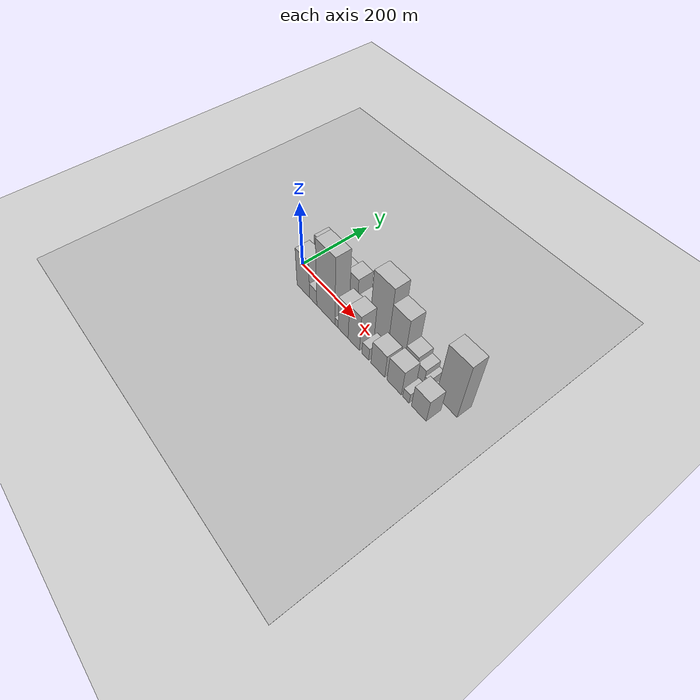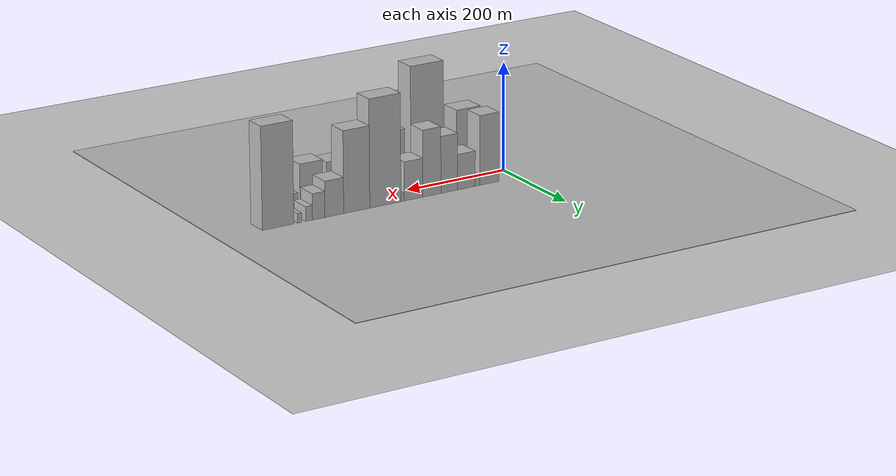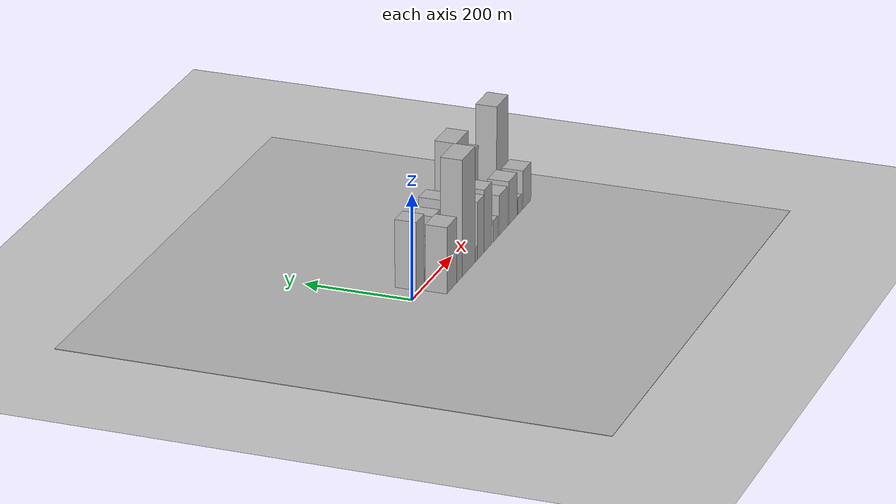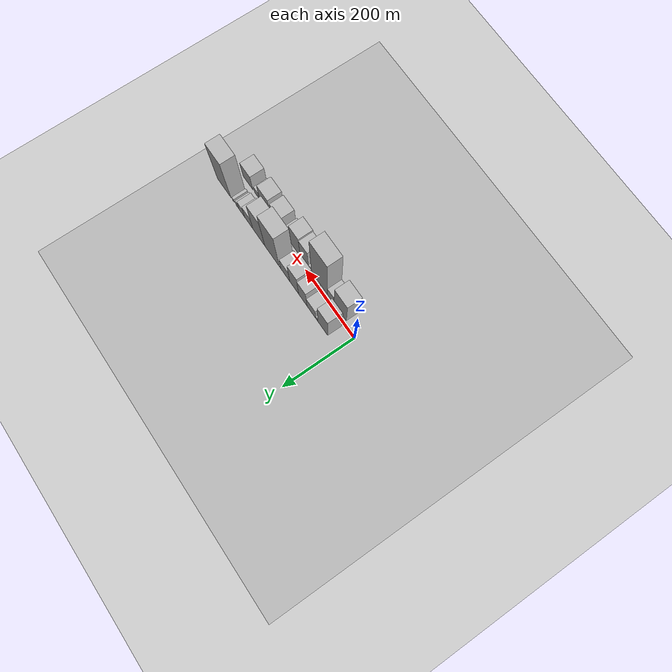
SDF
<?xml version="1.0" encoding="utf-8"?>

<sdf version="1.6">

   <world name="default">

      <gui fullscreen="0">

         <camera name="user_camera">

            <pose>-15 0 4.57585 0 0 0</pose>

            <view_controller>orbit</view_controller>

         </camera>

      </gui>

      <scene>

         <sky>

           <clouds>

             <speed>12</speed>

           </clouds>

         </sky>

         <ambient>0.4 0.4 0.4 1</ambient>

         <background>0.7 0.7 0.7 1</background>

         <shadows>1</shadows>

      </scene>

      <gravity>0 0 -9.8066</gravity>

      <magnetic_field>6e-06 2.3e-05 -4.2e-05</magnetic_field>

      <physics default="0" name="default_physics" type="ode">

         <ode>

            <solver>

               <type>quick</type>

               <iters>10</iters>

               <sor>1.0</sor>

               <use_dynamic_moi_rescaling>0</use_dynamic_moi_rescaling>

            </solver>

            <constraints>

               <cfm>0</cfm>

               <erp>0.2</erp>

               <contact_max_correcting_vel>100</contact_max_correcting_vel>

               <contact_surface_layer>0.001</contact_surface_layer>

            </constraints>

         </ode>

         <max_step_size>0.004</max_step_size>

         <real_time_factor>1</real_time_factor>

         <real_time_update_rate>250</real_time_update_rate>

      </physics>

      <light name="sun" type="directional">

         <cast_shadows>1</cast_shadows>

         <pose>0 0 10 0 0 0</pose>

         <diffuse>0.8 0.8 0.8 1</diffuse>

         <specular>0.2 0.2 0.2 1</specular>

         <attenuation>

            <range>1000</range>

            <constant>0.9</constant>

            <linear>0.01</linear>

            <quadratic>0.001</quadratic>

         </attenuation>

         <direction>-0.5 0.1 -0.9</direction>

      </light>

      <include>

         <name>ground_plane_1</name>

         <uri>model://HANNAS_ground_plane</uri>

         <pose>0 0 0  0 0 0</pose>

      </include>

      <include>

         <name>ground_plane_2</name>

         <uri>model://HANNAS_ground_plane</uri>

         <pose>100 0 0  0 0 0</pose>

      </include>

      <model name="building_1">

         <static>1</static>

         <pose frame="">60.0380 27.5000 0 0.000000 0.000000 1.570796</pose>

         <link name="link">

            <pose frame="">0 0 64.50 0 0 0</pose>

            <collision name="collision">

               <geometry>

                  <box>

                     <size>40.0000 40.0759 129.0000</size>

                  </box>

               </geometry>

               <max_contacts>10</max_contacts>

               <surface>

                  <contact>

                     <ode/>

                  </contact>

                  <bounce/>

                  <friction>

                     <torsional>

                        <ode/>

                     </torsional>

                     <ode/>

                  </friction>

               </surface>

            </collision>

            <visual name="visual">

               <cast_shadows>0</cast_shadows>

               <geometry>

                  <box>

                     <size>40.0000 40.0759 129.0000</size>

                  </box>

               </geometry>

               <material>

                  <script>

                     <uri>model://HANNAS_wall/materials/scripts</uri>

                     <uri>model://HANNAS_wall/materials/textures</uri>

                     <name>vrc/HANNAS_wall</name>

                  </script>

               </material>

            </visual>

            <self_collide>0</self_collide>

            <enable_wind>0</enable_wind>

            <kinematic>0</kinematic>

         </link>

      </model>

      <model name="building_2">

         <static>1</static>

         <pose frame="">84.7086 27.5000 0 0.000000 0.000000 1.570796</pose>

         <link name="link">

            <pose frame="">0 0 10.50 0 0 0</pose>

            <collision name="collision">

               <geometry>

                  <box>

                     <size>40.0000 9.2653 21.0000</size>

                  </box>

               </geometry>

               <max_contacts>10</max_contacts>

               <surface>

                  <contact>

                     <ode/>

                  </contact>

                  <bounce/>

                  <friction>

                     <torsional>

                        <ode/>

                     </torsional>

                     <ode/>

                  </friction>

               </surface>

            </collision>

            <visual name="visual">

               <cast_shadows>0</cast_shadows>

               <geometry>

                  <box>

                     <size>40.0000 9.2653 21.0000</size>

                  </box>

               </geometry>

               <material>

                  <script>

                     <uri>model://HANNAS_wall/materials/scripts</uri>

                     <uri>model://HANNAS_wall/materials/textures</uri>

                     <name>vrc/HANNAS_wall</name>

                  </script>

               </material>

            </visual>

            <self_collide>0</self_collide>

            <enable_wind>0</enable_wind>

            <kinematic>0</kinematic>

         </link>

      </model>

      <model name="building_3">

         <static>1</static>

         <pose frame="">107.3640 27.5000 0 0.000000 0.000000 1.570796</pose>

         <link name="link">

            <pose frame="">0 0 33.00 0 0 0</pose>

            <collision name="collision">

               <geometry>

                  <box>

                     <size>40.0000 36.0454 66.0000</size>

                  </box>

               </geometry>

               <max_contacts>10</max_contacts>

               <surface>

                  <contact>

                     <ode/>

                  </contact>

                  <bounce/>

                  <friction>

                     <torsional>

                        <ode/>

                     </torsional>

                     <ode/>

                  </friction>

               </surface>

            </collision>

            <visual name="visual">

               <cast_shadows>0</cast_shadows>

               <geometry>

                  <box>

                     <size>40.0000 36.0454 66.0000</size>

                  </box>

               </geometry>

               <material>

                  <script>

                     <uri>model://HANNAS_wall/materials/scripts</uri>

                     <uri>model://HANNAS_wall/materials/textures</uri>

                     <name>vrc/HANNAS_wall</name>

                  </script>

               </material>

            </visual>

            <self_collide>0</self_collide>

            <enable_wind>0</enable_wind>

            <kinematic>0</kinematic>

         </link>

      </model>

      <model name="building_4">

         <static>1</static>

         <pose frame="">142.6135 27.5000 0 0.000000 0.000000 1.570796</pose>

         <link name="link">

            <pose frame="">0 0 52.50 0 0 0</pose>

            <collision name="collision">

               <geometry>

                  <box>

                     <size>40.0000 34.4536 105.0000</size>

                  </box>

               </geometry>

               <max_contacts>10</max_contacts>

               <surface>

                  <contact>

                     <ode/>

                  </contact>

                  <bounce/>

                  <friction>

                     <torsional>

                        <ode/>

                     </torsional>

                     <ode/>

                  </friction>

               </surface>

            </collision>

            <visual name="visual">

               <cast_shadows>0</cast_shadows>

               <geometry>

                  <box>

                     <size>40.0000 34.4536 105.0000</size>

                  </box>

               </geometry>

               <material>

                  <script>

                     <uri>model://HANNAS_wall/materials/scripts</uri>

                     <uri>model://HANNAS_wall/materials/textures</uri>

                     <name>vrc/HANNAS_wall</name>

                  </script>

               </material>

            </visual>

            <self_collide>0</self_collide>

            <enable_wind>0</enable_wind>

            <kinematic>0</kinematic>

         </link>

      </model>

      <model name="building_5">

         <static>1</static>

         <pose frame="">178.4815 27.5000 0 0.000000 0.000000 1.570796</pose>

         <link name="link">

            <pose frame="">0 0 61.50 0 0 0</pose>

            <collision name="collision">

               <geometry>

                  <box>

                     <size>40.0000 37.2824 123.0000</size>

                  </box>

               </geometry>

               <max_contacts>10</max_contacts>

               <surface>

                  <contact>

                     <ode/>

                  </contact>

                  <bounce/>

                  <friction>

                     <torsional>

                        <ode/>

                     </torsional>

                     <ode/>

                  </friction>

               </surface>

            </collision>

            <visual name="visual">

               <cast_shadows>0</cast_shadows>

               <geometry>

                  <box>

                     <size>40.0000 37.2824 123.0000</size>

                  </box>

               </geometry>

               <material>

                  <script>

                     <uri>model://HANNAS_wall/materials/scripts</uri>

                     <uri>model://HANNAS_wall/materials/textures</uri>

                     <name>vrc/HANNAS_wall</name>

                  </script>

               </material>

            </visual>

            <self_collide>0</self_collide>

            <enable_wind>0</enable_wind>

            <kinematic>0</kinematic>

         </link>

      </model>

      <model name="building_6">

         <static>1</static>

         <pose frame="">215.9666 27.5000 0 0.000000 0.000000 1.570796</pose>

         <link name="link">

            <pose frame="">0 0 36.00 0 0 0</pose>

            <collision name="collision">

               <geometry>

                  <box>

                     <size>40.0000 37.6877 72.0000</size>

                  </box>

               </geometry>

               <max_contacts>10</max_contacts>

               <surface>

                  <contact>

                     <ode/>

                  </contact>

                  <bounce/>

                  <friction>

                     <torsional>

                        <ode/>

                     </torsional>

                     <ode/>

                  </friction>

               </surface>

            </collision>

            <visual name="visual">

               <cast_shadows>0</cast_shadows>

               <geometry>

                  <box>

                     <size>40.0000 37.6877 72.0000</size>

                  </box>

               </geometry>

               <material>

                  <script>

                     <uri>model://HANNAS_wall/materials/scripts</uri>

                     <uri>model://HANNAS_wall/materials/textures</uri>

                     <name>vrc/HANNAS_wall</name>

                  </script>

               </material>

            </visual>

            <self_collide>0</self_collide>

            <enable_wind>0</enable_wind>

            <kinematic>0</kinematic>

         </link>

      </model>

      <model name="building_7">

         <static>1</static>

         <pose frame="">238.1888 27.5000 0 0.000000 0.000000 1.570796</pose>

         <link name="link">

            <pose frame="">0 0 7.50 0 0 0</pose>

            <collision name="collision">

               <geometry>

                  <box>

                     <size>40.0000 6.7567 15.0000</size>

                  </box>

               </geometry>

               <max_contacts>10</max_contacts>

               <surface>

                  <contact>

                     <ode/>

                  </contact>

                  <bounce/>

                  <friction>

                     <torsional>

                        <ode/>

                     </torsional>

                     <ode/>

                  </friction>

               </surface>

            </collision>

            <visual name="visual">

               <cast_shadows>0</cast_shadows>

               <geometry>

                  <box>

                     <size>40.0000 6.7567 15.0000</size>

                  </box>

               </geometry>

               <material>

                  <script>

                     <uri>model://HANNAS_wall/materials/scripts</uri>

                     <uri>model://HANNAS_wall/materials/textures</uri>

                     <name>vrc/HANNAS_wall</name>

                  </script>

               </material>

            </visual>

            <self_collide>0</self_collide>

            <enable_wind>0</enable_wind>

            <kinematic>0</kinematic>

         </link>

      </model>

      <model name="building_8">

         <static>1</static>

         <pose frame="">272.8976 27.5000 0 0.000000 0.000000 1.570796</pose>

         <link name="link">

            <pose frame="">0 0 99.00 0 0 0</pose>

            <collision name="collision">

               <geometry>

                  <box>

                     <size>40.0000 62.6610 198.0000</size>

                  </box>

               </geometry>

               <max_contacts>10</max_contacts>

               <surface>

                  <contact>

                     <ode/>

                  </contact>

                  <bounce/>

                  <friction>

                     <torsional>

                        <ode/>

                     </torsional>

                     <ode/>

                  </friction>

               </surface>

            </collision>

            <visual name="visual">

               <cast_shadows>0</cast_shadows>

               <geometry>

                  <box>

                     <size>40.0000 62.6610 198.0000</size>

                  </box>

               </geometry>

               <material>

                  <script>

                     <uri>model://HANNAS_wall/materials/scripts</uri>

                     <uri>model://HANNAS_wall/materials/textures</uri>

                     <name>vrc/HANNAS_wall</name>

                  </script>

               </material>

            </visual>

            <self_collide>0</self_collide>

            <enable_wind>0</enable_wind>

            <kinematic>0</kinematic>

         </link>

      </model>

      <model name="building_9">

         <static>1</static>

         <pose frame="">330.2017 27.5000 0 0.000000 0.000000 1.570796</pose>

         <link name="link">

            <pose frame="">0 0 75.00 0 0 0</pose>

            <collision name="collision">

               <geometry>

                  <box>

                     <size>40.0000 51.9472 150.0000</size>

                  </box>

               </geometry>

               <max_contacts>10</max_contacts>

               <surface>

                  <contact>

                     <ode/>

                  </contact>

                  <bounce/>

                  <friction>

                     <torsional>

                        <ode/>

                     </torsional>

                     <ode/>

                  </friction>

               </surface>

            </collision>

            <visual name="visual">

               <cast_shadows>0</cast_shadows>

               <geometry>

                  <box>

                     <size>40.0000 51.9472 150.0000</size>

                  </box>

               </geometry>

               <material>

                  <script>

                     <uri>model://HANNAS_wall/materials/scripts</uri>

                     <uri>model://HANNAS_wall/materials/textures</uri>

                     <name>vrc/HANNAS_wall</name>

                  </script>

               </material>

            </visual>

            <self_collide>0</self_collide>

            <enable_wind>0</enable_wind>

            <kinematic>0</kinematic>

         </link>

      </model>

      <model name="building_10">

         <static>1</static>

         <pose frame="">374.7162 27.5000 0 0.000000 0.000000 1.570796</pose>

         <link name="link">

            <pose frame="">0 0 33.00 0 0 0</pose>

            <collision name="collision">

               <geometry>

                  <box>

                     <size>40.0000 37.0818 66.0000</size>

                  </box>

               </geometry>

               <max_contacts>10</max_contacts>

               <surface>

                  <contact>

                     <ode/>

                  </contact>

                  <bounce/>

                  <friction>

                     <torsional>

                        <ode/>

                     </torsional>

                     <ode/>

                  </friction>

               </surface>

            </collision>

            <visual name="visual">

               <cast_shadows>0</cast_shadows>

               <geometry>

                  <box>

                     <size>40.0000 37.0818 66.0000</size>

                  </box>

               </geometry>

               <material>

                  <script>

                     <uri>model://HANNAS_wall/materials/scripts</uri>

                     <uri>model://HANNAS_wall/materials/textures</uri>

                     <name>vrc/HANNAS_wall</name>

                  </script>

               </material>

            </visual>

            <self_collide>0</self_collide>

            <enable_wind>0</enable_wind>

            <kinematic>0</kinematic>

         </link>

      </model>

      <model name="building_11">

         <static>1</static>

         <pose frame="">405.5777 27.5000 0 0.000000 0.000000 1.570796</pose>

         <link name="link">

            <pose frame="">0 0 24.00 0 0 0</pose>

            <collision name="collision">

               <geometry>

                  <box>

                     <size>40.0000 24.6411 48.0000</size>

                  </box>

               </geometry>

               <max_contacts>10</max_contacts>

               <surface>

                  <contact>

                     <ode/>

                  </contact>

                  <bounce/>

                  <friction>

                     <torsional>

                        <ode/>

                     </torsional>

                     <ode/>

                  </friction>

               </surface>

            </collision>

            <visual name="visual">

               <cast_shadows>0</cast_shadows>

               <geometry>

                  <box>

                     <size>40.0000 24.6411 48.0000</size>

                  </box>

               </geometry>

               <material>

                  <script>

                     <uri>model://HANNAS_wall/materials/scripts</uri>

                     <uri>model://HANNAS_wall/materials/textures</uri>

                     <name>vrc/HANNAS_wall</name>

                  </script>

               </material>

            </visual>

            <self_collide>0</self_collide>

            <enable_wind>0</enable_wind>

            <kinematic>0</kinematic>

         </link>

      </model>

      <model name="building_12">

         <static>1</static>

         <pose frame="">424.4963 27.5000 0 0.000000 0.000000 1.570796</pose>

         <link name="link">

            <pose frame="">0 0 13.50 0 0 0</pose>

            <collision name="collision">

               <geometry>

                  <box>

                     <size>40.0000 13.1961 27.0000</size>

                  </box>

               </geometry>

               <max_contacts>10</max_contacts>

               <surface>

                  <contact>

                     <ode/>

                  </contact>

                  <bounce/>

                  <friction>

                     <torsional>

                        <ode/>

                     </torsional>

                     <ode/>

                  </friction>

               </surface>

            </collision>

            <visual name="visual">

               <cast_shadows>0</cast_shadows>

               <geometry>

                  <box>

                     <size>40.0000 13.1961 27.0000</size>

                  </box>

               </geometry>

               <material>

                  <script>

                     <uri>model://HANNAS_wall/materials/scripts</uri>

                     <uri>model://HANNAS_wall/materials/textures</uri>

                     <name>vrc/HANNAS_wall</name>

                  </script>

               </material>

            </visual>

            <self_collide>0</self_collide>

            <enable_wind>0</enable_wind>

            <kinematic>0</kinematic>

         </link>

      </model>

      <model name="building_13">

         <static>1</static>

         <pose frame="">443.1050 27.5000 0 0.000000 0.000000 1.570796</pose>

         <link name="link">

            <pose frame="">0 0 9.00 0 0 0</pose>

            <collision name="collision">

               <geometry>

                  <box>

                     <size>40.0000 8.0213 18.0000</size>

                  </box>

               </geometry>

               <max_contacts>10</max_contacts>

               <surface>

                  <contact>

                     <ode/>

                  </contact>

                  <bounce/>

                  <friction>

                     <torsional>

                        <ode/>

                     </torsional>

                     <ode/>

                  </friction>

               </surface>

            </collision>

            <visual name="visual">

               <cast_shadows>0</cast_shadows>

               <geometry>

                  <box>

                     <size>40.0000 8.0213 18.0000</size>

                  </box>

               </geometry>

               <material>

                  <script>

                     <uri>model://HANNAS_wall/materials/scripts</uri>

                     <uri>model://HANNAS_wall/materials/textures</uri>

                     <name>vrc/HANNAS_wall</name>

                  </script>

               </material>

            </visual>

            <self_collide>0</self_collide>

            <enable_wind>0</enable_wind>

            <kinematic>0</kinematic>

         </link>

      </model>

      <model name="building_14">

         <static>1</static>

         <pose frame="">484.8795 27.5000 0 0.000000 0.000000 1.570796</pose>

         <link name="link">

            <pose frame="">0 0 93.00 0 0 0</pose>

            <collision name="collision">

               <geometry>

                  <box>

                     <size>40.0000 61.5275 186.0000</size>

                  </box>

               </geometry>

               <max_contacts>10</max_contacts>

               <surface>

                  <contact>

                     <ode/>

                  </contact>

                  <bounce/>

                  <friction>

                     <torsional>

                        <ode/>

                     </torsional>

                     <ode/>

                  </friction>

               </surface>

            </collision>

            <visual name="visual">

               <cast_shadows>0</cast_shadows>

               <geometry>

                  <box>

                     <size>40.0000 61.5275 186.0000</size>

                  </box>

               </geometry>

               <material>

                  <script>

                     <uri>model://HANNAS_wall/materials/scripts</uri>

                     <uri>model://HANNAS_wall/materials/textures</uri>

                     <name>vrc/HANNAS_wall</name>

                  </script>

               </material>

            </visual>

            <self_collide>0</self_collide>

            <enable_wind>0</enable_wind>

            <kinematic>0</kinematic>

         </link>

      </model>

      <model name="building_15">

         <static>1</static>

         <pose frame="">68.8182 -27.5000 0 0.000000 0.000000 1.570796</pose>

         <link name="link">

            <pose frame="">0 0 63.00 0 0 0</pose>

            <collision name="collision">

               <geometry>

                  <box>

                     <size>40.0000 49.6365 126.0000</size>

                  </box>

               </geometry>

               <max_contacts>10</max_contacts>

               <surface>

                  <contact>

                     <ode/>

                  </contact>

                  <bounce/>

                  <friction>

                     <torsional>

                        <ode/>

                     </torsional>

                     <ode/>

                  </friction>

               </surface>

            </collision>

            <visual name="visual">

               <cast_shadows>0</cast_shadows>

               <geometry>

                  <box>

                     <size>40.0000 49.6365 126.0000</size>

                  </box>

               </geometry>

               <material>

                  <script>

                     <uri>model://HANNAS_wall/materials/scripts</uri>

                     <uri>model://HANNAS_wall/materials/textures</uri>

                     <name>vrc/HANNAS_wall</name>

                  </script>

               </material>

            </visual>

            <self_collide>0</self_collide>

            <enable_wind>0</enable_wind>

            <kinematic>0</kinematic>

         </link>

      </model>

      <model name="building_16">

         <static>1</static>

         <pose frame="">107.2414 -27.5000 0 0.000000 0.000000 1.570796</pose>

         <link name="link">

            <pose frame="">0 0 25.50 0 0 0</pose>

            <collision name="collision">

               <geometry>

                  <box>

                     <size>40.0000 27.2099 51.0000</size>

                  </box>

               </geometry>

               <max_contacts>10</max_contacts>

               <surface>

                  <contact>

                     <ode/>

                  </contact>

                  <bounce/>

                  <friction>

                     <torsional>

                        <ode/>

                     </torsional>

                     <ode/>

                  </friction>

               </surface>

            </collision>

            <visual name="visual">

               <cast_shadows>0</cast_shadows>

               <geometry>

                  <box>

                     <size>40.0000 27.2099 51.0000</size>

                  </box>

               </geometry>

               <material>

                  <script>

                     <uri>model://HANNAS_wall/materials/scripts</uri>

                     <uri>model://HANNAS_wall/materials/textures</uri>

                     <name>vrc/HANNAS_wall</name>

                  </script>

               </material>

            </visual>

            <self_collide>0</self_collide>

            <enable_wind>0</enable_wind>

            <kinematic>0</kinematic>

         </link>

      </model>

      <model name="building_17">

         <static>1</static>

         <pose frame="">154.3168 -27.5000 0 0.000000 0.000000 1.570796</pose>

         <link name="link">

            <pose frame="">0 0 111.00 0 0 0</pose>

            <collision name="collision">

               <geometry>

                  <box>

                     <size>40.0000 66.9409 222.0000</size>

                  </box>

               </geometry>

               <max_contacts>10</max_contacts>

               <surface>

                  <contact>

                     <ode/>

                  </contact>

                  <bounce/>

                  <friction>

                     <torsional>

                        <ode/>

                     </torsional>

                     <ode/>

                  </friction>

               </surface>

            </collision>

            <visual name="visual">

               <cast_shadows>0</cast_shadows>

               <geometry>

                  <box>

                     <size>40.0000 66.9409 222.0000</size>

                  </box>

               </geometry>

               <material>

                  <script>

                     <uri>model://HANNAS_wall/materials/scripts</uri>

                     <uri>model://HANNAS_wall/materials/textures</uri>

                     <name>vrc/HANNAS_wall</name>

                  </script>

               </material>

            </visual>

            <self_collide>0</self_collide>

            <enable_wind>0</enable_wind>

            <kinematic>0</kinematic>

         </link>

      </model>

      <model name="building_18">

         <static>1</static>

         <pose frame="">193.7803 -27.5000 0 0.000000 0.000000 1.570796</pose>

         <link name="link">

            <pose frame="">0 0 13.50 0 0 0</pose>

            <collision name="collision">

               <geometry>

                  <box>

                     <size>40.0000 11.9861 27.0000</size>

                  </box>

               </geometry>

               <max_contacts>10</max_contacts>

               <surface>

                  <contact>

                     <ode/>

                  </contact>

                  <bounce/>

                  <friction>

                     <torsional>

                        <ode/>

                     </torsional>

                     <ode/>

                  </friction>

               </surface>

            </collision>

            <visual name="visual">

               <cast_shadows>0</cast_shadows>

               <geometry>

                  <box>

                     <size>40.0000 11.9861 27.0000</size>

                  </box>

               </geometry>

               <material>

                  <script>

                     <uri>model://HANNAS_wall/materials/scripts</uri>

                     <uri>model://HANNAS_wall/materials/textures</uri>

                     <name>vrc/HANNAS_wall</name>

                  </script>

               </material>

            </visual>

            <self_collide>0</self_collide>

            <enable_wind>0</enable_wind>

            <kinematic>0</kinematic>

         </link>

      </model>

      <model name="building_19">

         <static>1</static>

         <pose frame="">217.4618 -27.5000 0 0.000000 0.000000 1.570796</pose>

         <link name="link">

            <pose frame="">0 0 55.50 0 0 0</pose>

            <collision name="collision">

               <geometry>

                  <box>

                     <size>40.0000 35.3767 111.0000</size>

                  </box>

               </geometry>

               <max_contacts>10</max_contacts>

               <surface>

                  <contact>

                     <ode/>

                  </contact>

                  <bounce/>

                  <friction>

                     <torsional>

                        <ode/>

                     </torsional>

                     <ode/>

                  </friction>

               </surface>

            </collision>

            <visual name="visual">

               <cast_shadows>0</cast_shadows>

               <geometry>

                  <box>

                     <size>40.0000 35.3767 111.0000</size>

                  </box>

               </geometry>

               <material>

                  <script>

                     <uri>model://HANNAS_wall/materials/scripts</uri>

                     <uri>model://HANNAS_wall/materials/textures</uri>

                     <name>vrc/HANNAS_wall</name>

                  </script>

               </material>

            </visual>

            <self_collide>0</self_collide>

            <enable_wind>0</enable_wind>

            <kinematic>0</kinematic>

         </link>

      </model>

      <model name="building_20">

         <static>1</static>

         <pose frame="">254.8208 -27.5000 0 0.000000 0.000000 1.570796</pose>

         <link name="link">

            <pose frame="">0 0 60.00 0 0 0</pose>

            <collision name="collision">

               <geometry>

                  <box>

                     <size>40.0000 39.3413 120.0000</size>

                  </box>

               </geometry>

               <max_contacts>10</max_contacts>

               <surface>

                  <contact>

                     <ode/>

                  </contact>

                  <bounce/>

                  <friction>

                     <torsional>

                        <ode/>

                     </torsional>

                     <ode/>

                  </friction>

               </surface>

            </collision>

            <visual name="visual">

               <cast_shadows>0</cast_shadows>

               <geometry>

                  <box>

                     <size>40.0000 39.3413 120.0000</size>

                  </box>

               </geometry>

               <material>

                  <script>

                     <uri>model://HANNAS_wall/materials/scripts</uri>

                     <uri>model://HANNAS_wall/materials/textures</uri>

                     <name>vrc/HANNAS_wall</name>

                  </script>

               </material>

            </visual>

            <self_collide>0</self_collide>

            <enable_wind>0</enable_wind>

            <kinematic>0</kinematic>

         </link>

      </model>

      <model name="building_21">

         <static>1</static>

         <pose frame="">294.1522 -27.5000 0 0.000000 0.000000 1.570796</pose>

         <link name="link">

            <pose frame="">0 0 21.00 0 0 0</pose>

            <collision name="collision">

               <geometry>

                  <box>

                     <size>40.0000 23.3217 42.0000</size>

                  </box>

               </geometry>

               <max_contacts>10</max_contacts>

               <surface>

                  <contact>

                     <ode/>

                  </contact>

                  <bounce/>

                  <friction>

                     <torsional>

                        <ode/>

                     </torsional>

                     <ode/>

                  </friction>

               </surface>

            </collision>

            <visual name="visual">

               <cast_shadows>0</cast_shadows>

               <geometry>

                  <box>

                     <size>40.0000 23.3217 42.0000</size>

                  </box>

               </geometry>

               <material>

                  <script>

                     <uri>model://HANNAS_wall/materials/scripts</uri>

                     <uri>model://HANNAS_wall/materials/textures</uri>

                     <name>vrc/HANNAS_wall</name>

                  </script>

               </material>

            </visual>

            <self_collide>0</self_collide>

            <enable_wind>0</enable_wind>

            <kinematic>0</kinematic>

         </link>

      </model>

      <model name="building_22">

         <static>1</static>

         <pose frame="">335.4431 -27.5000 0 0.000000 0.000000 1.570796</pose>

         <link name="link">

            <pose frame="">0 0 39.00 0 0 0</pose>

            <collision name="collision">

               <geometry>

                  <box>

                     <size>40.0000 45.2601 78.0000</size>

                  </box>

               </geometry>

               <max_contacts>10</max_contacts>

               <surface>

                  <contact>

                     <ode/>

                  </contact>

                  <bounce/>

                  <friction>

                     <torsional>

                        <ode/>

                     </torsional>

                     <ode/>

                  </friction>

               </surface>

            </collision>

            <visual name="visual">

               <cast_shadows>0</cast_shadows>

               <geometry>

                  <box>

                     <size>40.0000 45.2601 78.0000</size>

                  </box>

               </geometry>

               <material>

                  <script>

                     <uri>model://HANNAS_wall/materials/scripts</uri>

                     <uri>model://HANNAS_wall/materials/textures</uri>

                     <name>vrc/HANNAS_wall</name>

                  </script>

               </material>

            </visual>

            <self_collide>0</self_collide>

            <enable_wind>0</enable_wind>

            <kinematic>0</kinematic>

         </link>

      </model>

      <model name="building_23">

         <static>1</static>

         <pose frame="">387.7600 -27.5000 0 0.000000 0.000000 1.570796</pose>

         <link name="link">

            <pose frame="">0 0 42.00 0 0 0</pose>

            <collision name="collision">

               <geometry>

                  <box>

                     <size>40.0000 45.3736 84.0000</size>

                  </box>

               </geometry>

               <max_contacts>10</max_contacts>

               <surface>

                  <contact>

                     <ode/>

                  </contact>

                  <bounce/>

                  <friction>

                     <torsional>

                        <ode/>

                     </torsional>

                     <ode/>

                  </friction>

               </surface>

            </collision>

            <visual name="visual">

               <cast_shadows>0</cast_shadows>

               <geometry>

                  <box>

                     <size>40.0000 45.3736 84.0000</size>

                  </box>

               </geometry>

               <material>

                  <script>

                     <uri>model://HANNAS_wall/materials/scripts</uri>

                     <uri>model://HANNAS_wall/materials/textures</uri>

                     <name>vrc/HANNAS_wall</name>

                  </script>

               </material>

            </visual>

            <self_collide>0</self_collide>

            <enable_wind>0</enable_wind>

            <kinematic>0</kinematic>

         </link>

      </model>

      <model name="building_24">

         <static>1</static>

         <pose frame="">424.1152 -27.5000 0 0.000000 0.000000 1.570796</pose>

         <link name="link">

            <pose frame="">0 0 16.50 0 0 0</pose>

            <collision name="collision">

               <geometry>

                  <box>

                     <size>40.0000 19.3367 33.0000</size>

                  </box>

               </geometry>

               <max_contacts>10</max_contacts>

               <surface>

                  <contact>

                     <ode/>

                  </contact>

                  <bounce/>

                  <friction>

                     <torsional>

                        <ode/>

                     </torsional>

                     <ode/>

                  </friction>

               </surface>

            </collision>

            <visual name="visual">

               <cast_shadows>0</cast_shadows>

               <geometry>

                  <box>

                     <size>40.0000 19.3367 33.0000</size>

                  </box>

               </geometry>

               <material>

                  <script>

                     <uri>model://HANNAS_wall/materials/scripts</uri>

                     <uri>model://HANNAS_wall/materials/textures</uri>

                     <name>vrc/HANNAS_wall</name>

                  </script>

               </material>

            </visual>

            <self_collide>0</self_collide>

            <enable_wind>0</enable_wind>

            <kinematic>0</kinematic>

         </link>

      </model>

      <model name="building_25">

         <static>1</static>

         <pose frame="">462.6840 -27.5000 0 0.000000 0.000000 1.570796</pose>

         <link name="link">

            <pose frame="">0 0 37.50 0 0 0</pose>

            <collision name="collision">

               <geometry>

                  <box>

                     <size>40.0000 43.8010 75.0000</size>

                  </box>

               </geometry>

               <max_contacts>10</max_contacts>

               <surface>

                  <contact>

                     <ode/>

                  </contact>

                  <bounce/>

                  <friction>

                     <torsional>

                        <ode/>

                     </torsional>

                     <ode/>

                  </friction>

               </surface>

            </collision>

            <visual name="visual">

               <cast_shadows>0</cast_shadows>

               <geometry>

                  <box>

                     <size>40.0000 43.8010 75.0000</size>

                  </box>

               </geometry>

               <material>

                  <script>

                     <uri>model://HANNAS_wall/materials/scripts</uri>

                     <uri>model://HANNAS_wall/materials/textures</uri>

                     <name>vrc/HANNAS_wall</name>

                  </script>

               </material>

            </visual>

            <self_collide>0</self_collide>

            <enable_wind>0</enable_wind>

            <kinematic>0</kinematic>

         </link>

      </model>

   </world>

</sdf>

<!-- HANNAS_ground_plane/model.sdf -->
<sdf version="1.4">
<model name="HANNAS_ground_plane">
  <static>true</static>
    <link name="link">
      <collision name="collision">
        <geometry>
          <plane>
            <normal>0 0 1</normal>
            <size>1000 1000</size>
          </plane>
        </geometry>
        <surface>
          <friction>
            <ode>
              <mu>100</mu>
              <mu2>50</mu2>
            </ode>
          </friction>
        </surface>
      </collision>
      <visual name="visual">
        <cast_shadows>false</cast_shadows>
        <geometry>
          <plane>
            <normal>0 0 1</normal>
            <size>1000 1000</size>
          </plane>
        </geometry>
        <material>
          <script>
            <uri>model://HANNAS_ground_plane/materials/scripts/HANNAS_ground_plane.material</uri>
	    <uri>model://HANNAS_ground_plane/materials/textures</uri>
            <name>HANNASGroundPlane/Image</name>
          </script>
        </material>
      </visual>
    </link>
  </model>
</sdf>
